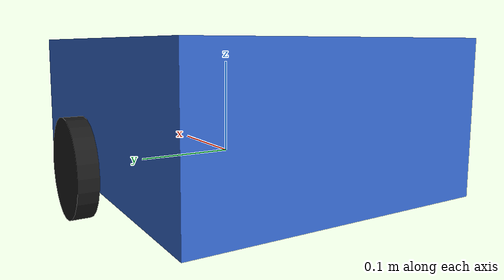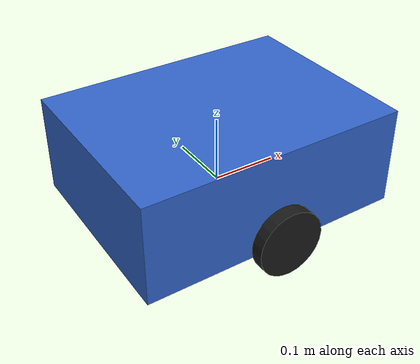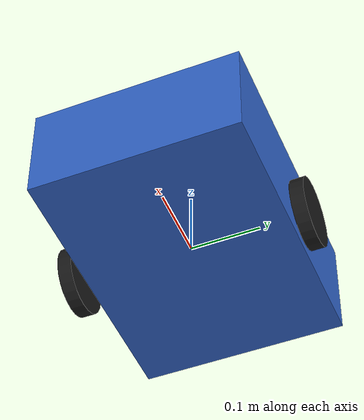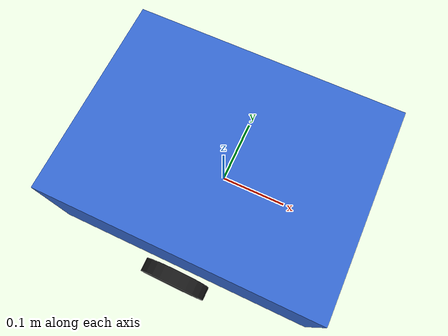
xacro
<?xml version="1.0"?>
<robot xmlns:xacro="http://www.ros.org/wiki/xacro" name="tethered_robot">

  <!-- Constants for easy modification of robot dimensions -->
  <xacro:property name="chassis_length" value="0.4"/>
  <xacro:property name="chassis_width" value="0.3"/>
  <xacro:property name="chassis_height" value="0.15"/>
  <xacro:property name="wheel_radius" value="0.05"/>
  <xacro:property name="wheel_width" value="0.02"/>
  <xacro:property name="wheel_separation_x" value="0.2"/> <!-- Distance between front and rear wheels -->
  <xacro:property name="wheel_separation_y" value="0.34"/> <!-- Distance between left and right wheels -->

  <!-- ========================= CORE COMPONENTS ========================= -->

  <!-- BASE LINK -->
  <!-- This is the primary coordinate frame of the robot. It does not have a visual component. -->
  <link name="base_link"/>
  <link name="base_footprint"/>
  <joint name="base_footprint_joint" type="fixed">
    <parent link="base_footprint"/>
    <child link="base_link"/>
    <origin xyz="0 0 0" rpy="0 0 0"/>
  </joint>

  <!-- CHASSIS LINK -->
  <!-- This represents the main body of the robot. -->
  <joint name="chassis_joint" type="fixed">
    <parent link="base_link"/>
    <child link="chassis_link"/>
    <origin xyz="0 0 ${wheel_radius}" rpy="0 0 0"/> <!-- Position the chassis above the ground -->
  </joint>

  <link name="chassis_link">
    <visual>
      <geometry>
        <box size="${chassis_length} ${chassis_width} ${chassis_height}"/>
      </geometry>
      <material name="blue">
        <color rgba="0.2 0.4 0.8 1.0"/>
      </material>
    </visual>
    <collision>
      <geometry>
        <box size="${chassis_length} ${chassis_width} ${chassis_height}"/>
      </geometry>
    </collision>
  </link>

  <!-- ========================= SENSOR MOUNTS ========================= -->

  <!-- IMU SENSOR LINK -->
  <joint name="imu_joint" type="fixed">
    <parent link="chassis_link"/>
    <child link="imu_link"/>
    <origin xyz="0 0 ${chassis_height / 2}" rpy="0 0 0"/> <!-- Centered on top of the chassis -->
  </joint>
  <link name="imu_link"/>

  <!-- FRONT LiDAR LINK -->
  <joint name="front_lidar_joint" type="fixed">
    <parent link="chassis_link"/>
    <child link="front_lidar_link"/>
    <!-- Positioned at the front edge, on top of the chassis -->
    <origin xyz="${chassis_length / 2} 0 ${chassis_height / 2}" rpy="0 0 0"/>
  </joint>
  <link name="front_lidar_link"/>

  <!-- REAR LiDAR LINK -->
  <joint name="rear_lidar_joint" type="fixed">
    <parent link="chassis_link"/>
    <child link="rear_lidar_link"/>
    <!-- Positioned at the rear edge, on top, and rotated 180 degrees -->
    <origin xyz="-${chassis_length / 2} 0 ${chassis_height / 2}" rpy="0 0 3.14159"/>
  </joint>
  <link name="rear_lidar_link"/>

  <!-- KINECT CAMERA LINK -->
  <joint name="camera_joint" type="fixed">
    <parent link="chassis_link"/>
    <child link="camera_link"/>
    <!-- Positioned near the front, on top -->
    <origin xyz="${chassis_length * 0.4} 0 ${chassis_height * 0.45}" rpy="0 0 0"/>
  </joint>
  <link name="camera_link"/>

  <!-- ULTRASONIC SENSOR LINK (Example, if you need it for visualization) -->
  <joint name="ultrasonic_joint" type="fixed">
    <parent link="chassis_link"/>
    <child link="ultrasonic_link"/>
    <!-- Positioned at the very front of the chassis -->
    <origin xyz="${chassis_length / 2} 0 0" rpy="0 0 0"/>
  </joint>
  <link name="ultrasonic_link"/>

  <!-- ========================== ACTUATORS (WHEELS) ===================== -->

  <!-- XACRO Macro for creating wheels to reduce code duplication -->
  <xacro:macro name="wheel" params="prefix side_y">
    <joint name="${prefix}_wheel_joint" type="continuous">
      <parent link="base_link"/>
      <child link="${prefix}_wheel_link"/>
      <!-- Place wheels relative to the base_link center -->
      <origin xyz="0 ${side_y} 0" rpy="-1.5707 0 0"/>
      <axis xyz="0 0 1"/> <!-- Axis of rotation -->
    </joint>

    <link name="${prefix}_wheel_link">
      <visual>
        <geometry>
          <cylinder radius="${wheel_radius}" length="${wheel_width}"/>
        </geometry>
        <material name="black">
          <color rgba="0.1 0.1 0.1 1.0"/>
        </material>
      </visual>
      <collision>
        <geometry>
          <cylinder radius="${wheel_radius}" length="${wheel_width}"/>
        </geometry>
      </collision>
    </link>
  </xacro:macro>

  <!-- Instantiate the four wheels using the macro -->
  <!-- NOTE: This is a simplified 4WD model. A real differential drive
       would only have two powered wheels, but for TF this is fine. -->
  <xacro:wheel prefix="left"  side_y="${wheel_separation_y / 2}" />
  <xacro:wheel prefix="right" side_y="-${wheel_separation_y / 2}" />

</robot>
